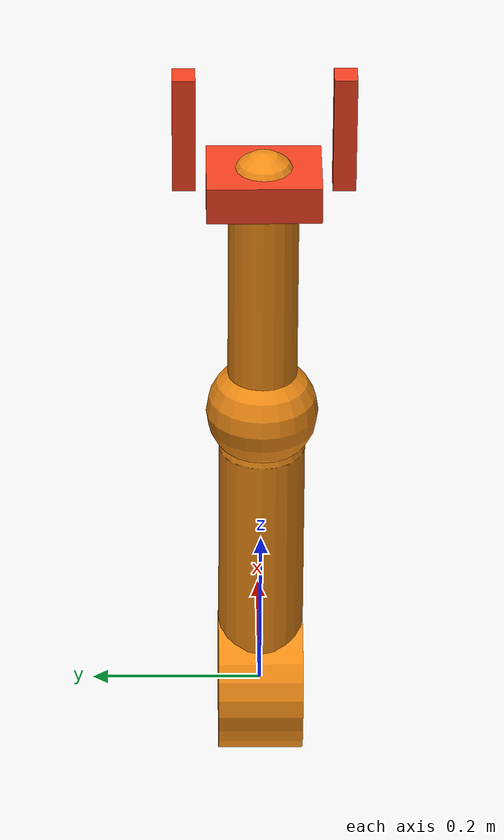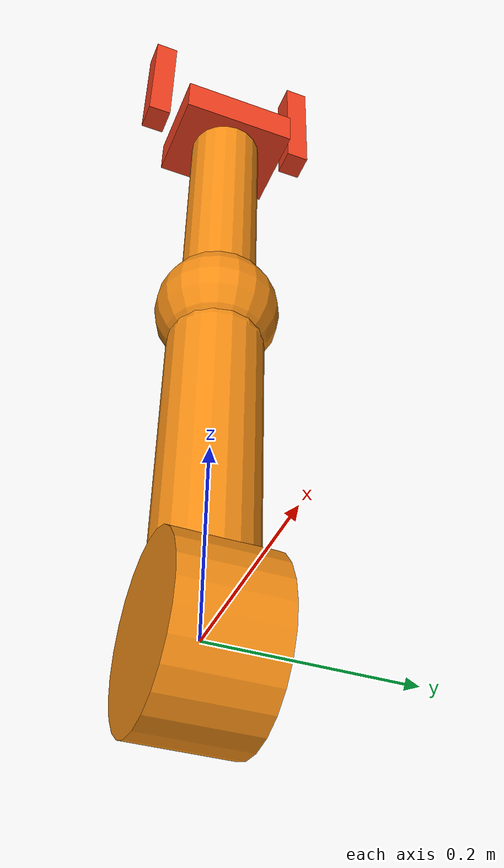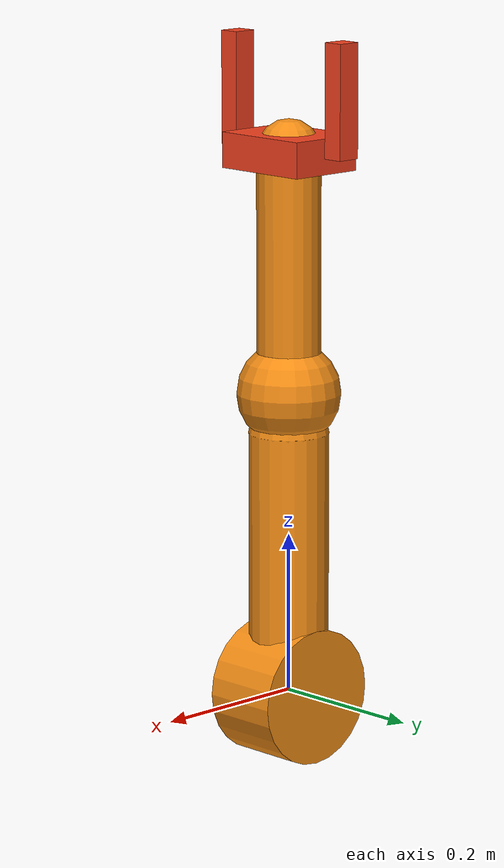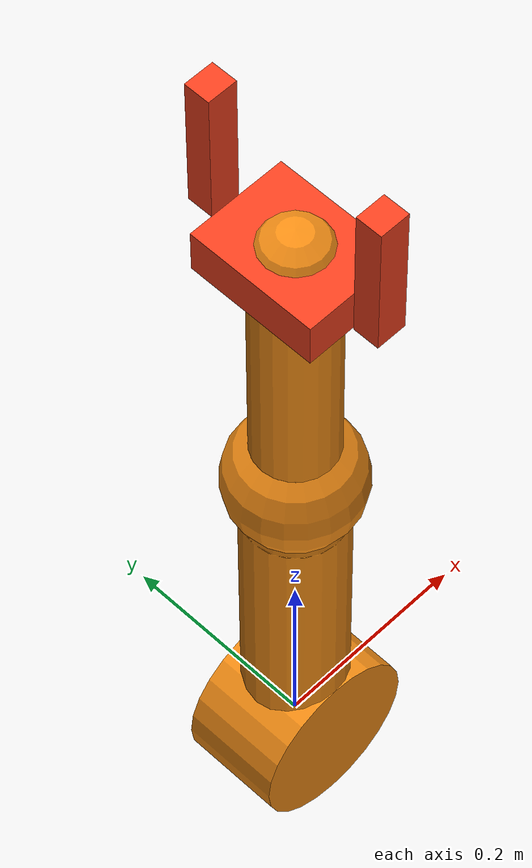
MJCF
<mujoco model="reference_arm">
  <!-- 参照 mujoco-pzc/MuJoCo 的两自由度臂: 肩俯仰 + 肘俯仰 位置舵机,
       掌部 + 单边滑动指(参考车原设计), 夹取由场景中的 weld 等式完成.
       q1=q2=0 时臂竖直向上, q1 正 = 向前倒. -->
  <compiler angle="radian" autolimits="true"/>
  <option integrator="implicitfast"/>

  <default>
    <default class="arm_orange">
      <geom rgba="0.95 0.55 0.08 1"/>
    </default>
    <joint damping="0.5" armature="0.02" frictionloss="0.05"/>
  </default>

  <worldbody>
    <body name="arm_base" pos="0 0 0">
      <joint name="shoulder_joint" type="hinge" axis="0 1 0" range="-0.3 2.2"/>
      <geom name="shoulder_motor" class="arm_orange" type="cylinder" size="0.085 0.05"
            euler="1.5708 0 0" mass="0.6"/>
      <body name="upper_arm" pos="0 0 0.05">
        <geom name="upper_link" class="arm_orange" type="capsule"
              fromto="0 0 0 0 0 0.28" size="0.05" mass="0.5"/>
        <body name="elbow" pos="0 0 0.33">
          <joint name="elbow_joint" type="hinge" axis="0 1 0" range="-2.8 2.6"/>
          <geom name="elbow_motor" class="arm_orange" type="sphere" size="0.065" mass="0.4"/>
          <body name="forearm" pos="0 0 0.05">
            <geom name="forearm_link" class="arm_orange" type="capsule"
                  fromto="0 0 0 0 0 0.25" size="0.04" mass="0.3"/>
            <!-- 腕部相机: 沿小臂向外看 (compose 加前缀后为 arm_cam) -->
            <body name="gripper_tip" pos="0 0 0.25">
              <site name="gripper_tcp" pos="0 0 0.10" size="0.006" rgba="1 0 0 0"/>
              <geom name="palm" type="box" size="0.05 0.065 0.022"
                    rgba="0.95 0.25 0.12 1" mass="0.2"/>
              <!-- 左指滑动(参考车原设计), 右指固定; ctrl 越负越紧 -->
              <body name="left_finger" pos="0 0.09 0.01">
                <joint name="finger_slide" type="slide" axis="0 -1 0" range="0 0.05"/>
                <geom name="left_finger_geom" type="box" pos="0 0 0.06"
                      size="0.015 0.013 0.07" rgba="0.95 0.25 0.12 1" mass="0.07"
                      friction="1.0 0.02 0.01" solimp="0.9 0.95 0.01" solref="0.01 1"/>
              </body>
              <body name="right_finger" pos="0 -0.09 0.01">
                <geom name="right_finger_geom" type="box" pos="0 0 0.06"
                      size="0.015 0.013 0.07" rgba="0.95 0.25 0.12 1" mass="0.07"
                      friction="1.0 0.02 0.01" solimp="0.9 0.95 0.01" solref="0.01 1"/>
              </body>
            </body>
          </body>
        </body>
      </body>
    </body>
  </worldbody>

  <!-- 深卷姿态下大小臂几何重叠, 排除自碰撞 (演示级臂的标准做法) -->
  <contact>
    <exclude body1="upper_arm" body2="forearm"/>
    <exclude body1="upper_arm" body2="gripper_tip"/>
    <exclude body1="upper_arm" body2="left_finger"/>
    <exclude body1="upper_arm" body2="right_finger"/>
  </contact>

  <actuator>
    <position name="shoulder_servo" joint="shoulder_joint" kp="240" kv="24"
              ctrlrange="-0.3 2.2" forcerange="-35 35"/>
    <position name="elbow_servo" joint="elbow_joint" kp="200" kv="20"
              ctrlrange="-2.8 2.6" forcerange="-25 25"/>
    <position name="finger_servo" joint="finger_slide" kp="90" kv="9"
              ctrlrange="0 0.05" forcerange="-10 10"/>
  </actuator>
</mujoco>
